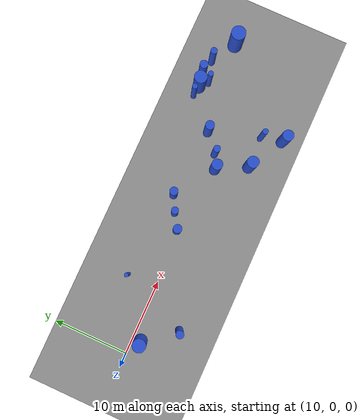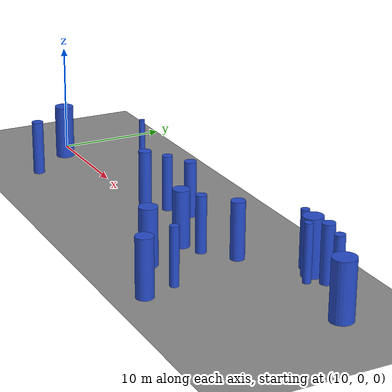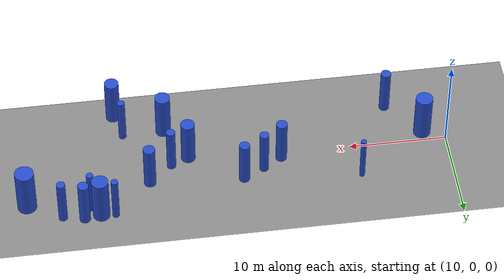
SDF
<sdf version="1.7">
 <world name="forest_randomization_v1">
  <gravity>0 0 -9.8</gravity>
  <light name="sun" type="directional">
   <pose>30 0 20 0 -0 0</pose>
   <diffuse>0.8 0.8 0.8 1</diffuse>
   <specular>0.2 0.2 0.2 1</specular>
   <direction>-0.5 0.5 -1</direction>
   <attenuation><range>10</range></attenuation>
   <spot><inner_angle>0</inner_angle><outer_angle>0</outer_angle><falloff>0</falloff></spot>
  </light>
  <model name="forest_ground_60x20">
   <static>1</static>
   <pose>30 0 0 0 -0 0</pose>
   <link name="link">
    <collision name="collision">
     <geometry><plane><normal>0 0 1</normal><size>60 20</size></plane></geometry>
    </collision>
    <visual name="visual">
     <cast_shadows>0</cast_shadows>
     <geometry><plane><normal>0 0 1</normal><size>60 20</size></plane></geometry>
     <material><ambient>0.45 0.45 0.45 1</ambient><diffuse>0.55 0.55 0.55 1</diffuse></material>
    </visual>
   </link>
  </model>
  <physics name="default_physics" type="ode">
   <max_step_size>0.001</max_step_size>
   <real_time_update_rate>1000</real_time_update_rate>
   <real_time_factor>1</real_time_factor>
  </physics>
  <scene>
   <ambient>0.4 0.4 0.4 1</ambient>
   <background>0.7 0.7 0.7 1</background>
   <shadows>1</shadows>
   <grid>1</grid>
  </scene>
  <magnetic_field>6e-06 2.3e-05 -4.2e-05</magnetic_field>
  <atmosphere type="adiabatic"/>
  <spherical_coordinates>
   <surface_model>EARTH_WGS84</surface_model>
   <latitude_deg>0</latitude_deg>
   <longitude_deg>0</longitude_deg>
   <elevation>0</elevation>
   <heading_deg>0</heading_deg>
  </spherical_coordinates>
  <model name="sparse_0">
   <static>0</static>
   <link name="link">
    <inertial>
     <mass>2</mass>
     <inertia><ixx>4.55047</ixx><ixy>0</ixy><ixz>0</ixz><iyy>4.55047</iyy><iyz>0</iyz><izz>0.767607</izz></inertia>
    </inertial>
    <collision name="collision">
     <geometry><cylinder><length>5</length><radius>0.876132</radius></cylinder></geometry>
     <surface><contact><collide_without_contact>1</collide_without_contact></contact></surface>
    </collision>
    <visual name="visual">
     <geometry><cylinder><length>5</length><radius>0.876132</radius></cylinder></geometry>
     <material>
      <script><uri>file://media/materials/scripts/gazebo.material</uri><name>Gazebo/Blue</name></script>
     </material>
    </visual>
    <gravity>0</gravity>
   </link>
   <pose>12.2644 -1.07933 2.5 0 -0 0</pose>
  </model>
  <model name="sparse_1">
   <static>0</static>
   <link name="link">
    <inertial>
     <mass>2</mass>
     <inertia>
      <ixx>4.20416</ixx>
      <ixy>0</ixy>
      <ixz>0</ixz>
      <iyy>4.20416</iyy>
      <iyz>0</iyz>
      <izz>0.0749835</izz>
     </inertia>
    </inertial>
    <collision name="collision">
     <geometry><cylinder><length>5</length><radius>0.273831</radius></cylinder></geometry>
     <surface><contact><collide_without_contact>1</collide_without_contact></contact></surface>
    </collision>
    <visual name="visual">
     <geometry><cylinder><length>5</length><radius>0.273831</radius></cylinder></geometry>
     <material>
      <script><uri>file://media/materials/scripts/gazebo.material</uri><name>Gazebo/Blue</name></script>
     </material>
    </visual>
    <gravity>0</gravity>
   </link>
   <pose>19.3477 3.91425 2.5 0 -0 0</pose>
  </model>
  <model name="sparse_2">
   <static>0</static>
   <link name="link">
    <inertial>
     <mass>2</mass>
     <inertia><ixx>4.30206</ixx><ixy>0</ixy><ixz>0</ixz><iyy>4.30206</iyy><iyz>0</iyz><izz>0.270791</izz></inertia>
    </inertial>
    <collision name="collision">
     <geometry><cylinder><length>5</length><radius>0.520376</radius></cylinder></geometry>
     <surface><contact><collide_without_contact>1</collide_without_contact></contact></surface>
    </collision>
    <visual name="visual">
     <geometry><cylinder><length>5</length><radius>0.520376</radius></cylinder></geometry>
     <material>
      <script><uri>file://media/materials/scripts/gazebo.material</uri><name>Gazebo/Blue</name></script>
     </material>
    </visual>
    <gravity>0</gravity>
   </link>
   <pose>15.5361 -5.0493 2.5 0 -0 0</pose>
  </model>
  <model name="medium_3">
   <static>0</static>
   <link name="link">
    <inertial>
     <mass>2</mass>
     <inertia><ixx>4.27819</ixx><ixy>0</ixy><ixz>0</ixz><iyy>4.27819</iyy><iyz>0</iyz><izz>0.22305</izz></inertia>
    </inertial>
    <collision name="collision">
     <geometry><cylinder><length>5</length><radius>0.472282</radius></cylinder></geometry>
     <surface><contact><collide_without_contact>1</collide_without_contact></contact></surface>
    </collision>
    <visual name="visual">
     <geometry><cylinder><length>5</length><radius>0.472282</radius></cylinder></geometry>
     <material>
      <script><uri>file://media/materials/scripts/gazebo.material</uri><name>Gazebo/Blue</name></script>
     </material>
    </visual>
    <gravity>0</gravity>
   </link>
   <pose>29.0841 1.74781 2.5 0 -0 0</pose>
  </model>
  <model name="medium_4">
   <static>0</static>
   <link name="link">
    <inertial>
     <mass>2</mass>
     <inertia><ixx>4.31536</ixx><ixy>0</ixy><ixz>0</ixz><iyy>4.31536</iyy><iyz>0</iyz><izz>0.29739</izz></inertia>
    </inertial>
    <collision name="collision">
     <geometry><cylinder><length>5</length><radius>0.545335</radius></cylinder></geometry>
     <surface><contact><collide_without_contact>1</collide_without_contact></contact></surface>
    </collision>
    <visual name="visual">
     <geometry><cylinder><length>5</length><radius>0.545335</radius></cylinder></geometry>
     <material>
      <script><uri>file://media/materials/scripts/gazebo.material</uri><name>Gazebo/Blue</name></script>
     </material>
    </visual>
    <gravity>0</gravity>
   </link>
   <pose>31.2353 2.8788 2.5 0 -0 0</pose>
  </model>
  <model name="medium_5">
   <static>0</static>
   <link name="link">
    <inertial>
     <mass>2</mass>
     <inertia><ixx>4.27335</ixx><ixy>0</ixy><ixz>0</ixz><iyy>4.27335</iyy><iyz>0</iyz><izz>0.21337</izz></inertia>
    </inertial>
    <collision name="collision">
     <geometry><cylinder><length>5</length><radius>0.46192</radius></cylinder></geometry>
     <surface><contact><collide_without_contact>1</collide_without_contact></contact></surface>
    </collision>
    <visual name="visual">
     <geometry><cylinder><length>5</length><radius>0.46192</radius></cylinder></geometry>
     <material>
      <script><uri>file://media/materials/scripts/gazebo.material</uri><name>Gazebo/Blue</name></script>
     </material>
    </visual>
    <gravity>0</gravity>
   </link>
   <pose>38.3675 0.158438 2.5 0 -0 0</pose>
  </model>
  <model name="medium_6">
   <static>0</static>
   <link name="link">
    <inertial>
     <mass>2</mass>
     <inertia><ixx>4.47291</ixx><ixy>0</ixy><ixz>0</ixz><iyy>4.47291</iyy><iyz>0</iyz><izz>0.61248</izz></inertia>
    </inertial>
    <collision name="collision">
     <geometry><cylinder><length>5</length><radius>0.782611</radius></cylinder></geometry>
     <surface><contact><collide_without_contact>1</collide_without_contact></contact></surface>
    </collision>
    <visual name="visual">
     <geometry><cylinder><length>5</length><radius>0.782611</radius></cylinder></geometry>
     <material>
      <script><uri>file://media/materials/scripts/gazebo.material</uri><name>Gazebo/Blue</name></script>
     </material>
    </visual>
    <gravity>0</gravity>
   </link>
   <pose>38.6871 -4.6701 2.5 0 -0 0</pose>
  </model>
  <model name="medium_7">
   <static>0</static>
   <link name="link">
    <inertial>
     <mass>2</mass>
     <inertia><ixx>4.42849</ixx><ixy>0</ixy><ixz>0</ixz><iyy>4.42849</iyy><iyz>0</iyz><izz>0.523656</izz></inertia>
    </inertial>
    <collision name="collision">
     <geometry><cylinder><length>5</length><radius>0.723641</radius></cylinder></geometry>
     <surface><contact><collide_without_contact>1</collide_without_contact></contact></surface>
    </collision>
    <visual name="visual">
     <geometry><cylinder><length>5</length><radius>0.723641</radius></cylinder></geometry>
     <material>
      <script><uri>file://media/materials/scripts/gazebo.material</uri><name>Gazebo/Blue</name></script>
     </material>
    </visual>
    <gravity>0</gravity>
   </link>
   <pose>36.5472 -0.694062 2.5 0 -0 0</pose>
  </model>
  <model name="medium_8">
   <static>0</static>
   <link name="link">
    <inertial>
     <mass>2</mass>
     <inertia><ixx>4.32954</ixx><ixy>0</ixy><ixz>0</ixz><iyy>4.32954</iyy><iyz>0</iyz><izz>0.325743</izz></inertia>
    </inertial>
    <collision name="collision">
     <geometry><cylinder><length>5</length><radius>0.570739</radius></cylinder></geometry>
     <surface><contact><collide_without_contact>1</collide_without_contact></contact></surface>
    </collision>
    <visual name="visual">
     <geometry><cylinder><length>5</length><radius>0.570739</radius></cylinder></geometry>
     <material>
      <script><uri>file://media/materials/scripts/gazebo.material</uri><name>Gazebo/Blue</name></script>
     </material>
    </visual>
    <gravity>0</gravity>
   </link>
   <pose>27.1432 0.522133 2.5 0 -0 0</pose>
  </model>
  <model name="dense_9">
   <static>0</static>
   <link name="link">
    <inertial>
     <mass>2</mass>
     <inertia><ixx>4.23928</ixx><ixy>0</ixy><ixz>0</ixz><iyy>4.23928</iyy><iyz>0</iyz><izz>0.145233</izz></inertia>
    </inertial>
    <collision name="collision">
     <geometry><cylinder><length>5</length><radius>0.381095</radius></cylinder></geometry>
     <surface><contact><collide_without_contact>1</collide_without_contact></contact></surface>
    </collision>
    <visual name="visual">
     <geometry><cylinder><length>5</length><radius>0.381095</radius></cylinder></geometry>
     <material>
      <script><uri>file://media/materials/scripts/gazebo.material</uri><name>Gazebo/Blue</name></script>
     </material>
    </visual>
    <gravity>0</gravity>
   </link>
   <pose>42.9077 -4.51362 2.5 0 -0 0</pose>
  </model>
  <model name="dense_10">
   <static>0</static>
   <link name="link">
    <inertial>
     <mass>2</mass>
     <inertia><ixx>4.63528</ixx><ixy>0</ixy><ixz>0</ixz><iyy>4.63528</iyy><iyz>0</iyz><izz>0.937225</izz></inertia>
    </inertial>
    <collision name="collision">
     <geometry><cylinder><length>5</length><radius>0.968104</radius></cylinder></geometry>
     <surface><contact><collide_without_contact>1</collide_without_contact></contact></surface>
    </collision>
    <visual name="visual">
     <geometry><cylinder><length>5</length><radius>0.968104</radius></cylinder></geometry>
     <material>
      <script><uri>file://media/materials/scripts/gazebo.material</uri><name>Gazebo/Blue</name></script>
     </material>
    </visual>
    <gravity>0</gravity>
   </link>
   <pose>53.2918 3.74008 2.5 0 -0 0</pose>
  </model>
  <model name="dense_11">
   <static>0</static>
   <link name="link">
    <inertial>
     <mass>2</mass>
     <inertia><ixx>4.31785</ixx><ixy>0</ixy><ixz>0</ixz><iyy>4.31785</iyy><iyz>0</iyz><izz>0.302369</izz></inertia>
    </inertial>
    <collision name="collision">
     <geometry><cylinder><length>5</length><radius>0.549881</radius></cylinder></geometry>
     <surface><contact><collide_without_contact>1</collide_without_contact></contact></surface>
    </collision>
    <visual name="visual">
     <geometry><cylinder><length>5</length><radius>0.549881</radius></cylinder></geometry>
     <material>
      <script><uri>file://media/materials/scripts/gazebo.material</uri><name>Gazebo/Blue</name></script>
     </material>
    </visual>
    <gravity>0</gravity>
   </link>
   <pose>47.6676 6.10919 2.5 0 -0 0</pose>
  </model>
  <model name="dense_12">
   <static>0</static>
   <link name="link">
    <inertial>
     <mass>2</mass>
     <inertia><ixx>4.43664</ixx><ixy>0</ixy><ixz>0</ixz><iyy>4.43664</iyy><iyz>0</iyz><izz>0.539943</izz></inertia>
    </inertial>
    <collision name="collision">
     <geometry><cylinder><length>5</length><radius>0.734808</radius></cylinder></geometry>
     <surface><contact><collide_without_contact>1</collide_without_contact></contact></surface>
    </collision>
    <visual name="visual">
     <geometry><cylinder><length>5</length><radius>0.734808</radius></cylinder></geometry>
     <material>
      <script><uri>file://media/materials/scripts/gazebo.material</uri><name>Gazebo/Blue</name></script>
     </material>
    </visual>
    <gravity>0</gravity>
   </link>
   <pose>43.6279 -7.34423 2.5 0 -0 0</pose>
  </model>
  <model name="dense_13">
   <static>0</static>
   <link name="link">
    <inertial>
     <mass>2</mass>
     <inertia><ixx>4.35007</ixx><ixy>0</ixy><ixz>0</ixz><iyy>4.35007</iyy><iyz>0</iyz><izz>0.366809</izz></inertia>
    </inertial>
    <collision name="collision">
     <geometry><cylinder><length>5</length><radius>0.605648</radius></cylinder></geometry>
     <surface><contact><collide_without_contact>1</collide_without_contact></contact></surface>
    </collision>
    <visual name="visual">
     <geometry><cylinder><length>5</length><radius>0.605648</radius></cylinder></geometry>
     <material>
      <script><uri>file://media/materials/scripts/gazebo.material</uri><name>Gazebo/Blue</name></script>
     </material>
    </visual>
    <gravity>0</gravity>
   </link>
   <pose>40.7548 2.18931 2.5 0 -0 0</pose>
  </model>
  <model name="dense_14">
   <static>0</static>
   <link name="link">
    <inertial>
     <mass>2</mass>
     <inertia><ixx>4.22945</ixx><ixy>0</ixy><ixz>0</ixz><iyy>4.22945</iyy><iyz>0</iyz><izz>0.125571</izz></inertia>
    </inertial>
    <collision name="collision">
     <geometry><cylinder><length>5</length><radius>0.35436</radius></cylinder></geometry>
     <surface><contact><collide_without_contact>1</collide_without_contact></contact></surface>
    </collision>
    <visual name="visual">
     <geometry><cylinder><length>5</length><radius>0.35436</radius></cylinder></geometry>
     <material>
      <script><uri>file://media/materials/scripts/gazebo.material</uri><name>Gazebo/Blue</name></script>
     </material>
    </visual>
    <gravity>0</gravity>
   </link>
   <pose>46.9098 4.81807 2.5 0 -0 0</pose>
  </model>
  <model name="dense_15">
   <static>0</static>
   <link name="link">
    <inertial>
     <mass>2</mass>
     <inertia><ixx>4.22988</ixx><ixy>0</ixy><ixz>0</ixz><iyy>4.22988</iyy><iyz>0</iyz><izz>0.126418</izz></inertia>
    </inertial>
    <collision name="collision">
     <geometry><cylinder><length>5</length><radius>0.355554</radius></cylinder></geometry>
     <surface><contact><collide_without_contact>1</collide_without_contact></contact></surface>
    </collision>
    <visual name="visual">
     <geometry><cylinder><length>5</length><radius>0.355554</radius></cylinder></geometry>
     <material>
      <script><uri>file://media/materials/scripts/gazebo.material</uri><name>Gazebo/Blue</name></script>
     </material>
    </visual>
    <gravity>0</gravity>
   </link>
   <pose>44.564 5.98181 2.5 0 -0 0</pose>
  </model>
  <model name="dense_16">
   <static>0</static>
   <link name="link">
    <inertial>
     <mass>2</mass>
     <inertia><ixx>4.26516</ixx><ixy>0</ixy><ixz>0</ixz><iyy>4.26516</iyy><iyz>0</iyz><izz>0.196992</izz></inertia>
    </inertial>
    <collision name="collision">
     <geometry><cylinder><length>5</length><radius>0.443838</radius></cylinder></geometry>
     <surface><contact><collide_without_contact>1</collide_without_contact></contact></surface>
    </collision>
    <visual name="visual">
     <geometry><cylinder><length>5</length><radius>0.443838</radius></cylinder></geometry>
     <material>
      <script><uri>file://media/materials/scripts/gazebo.material</uri><name>Gazebo/Blue</name></script>
     </material>
    </visual>
    <gravity>0</gravity>
   </link>
   <pose>49.8264 5.67014 2.5 0 -0 0</pose>
  </model>
  <model name="dense_17">
   <static>0</static>
   <link name="link">
    <inertial>
     <mass>2</mass>
     <inertia><ixx>4.52791</ixx><ixy>0</ixy><ixz>0</ixz><iyy>4.52791</iyy><iyz>0</iyz><izz>0.722491</izz></inertia>
    </inertial>
    <collision name="collision">
     <geometry><cylinder><length>5</length><radius>0.849995</radius></cylinder></geometry>
     <surface><contact><collide_without_contact>1</collide_without_contact></contact></surface>
    </collision>
    <visual name="visual">
     <geometry><cylinder><length>5</length><radius>0.849995</radius></cylinder></geometry>
     <material>
      <script><uri>file://media/materials/scripts/gazebo.material</uri><name>Gazebo/Blue</name></script>
     </material>
    </visual>
    <gravity>0</gravity>
   </link>
   <pose>45.9943 5.80279 2.5 0 -0 0</pose>
  </model>
 </world>
</sdf>
